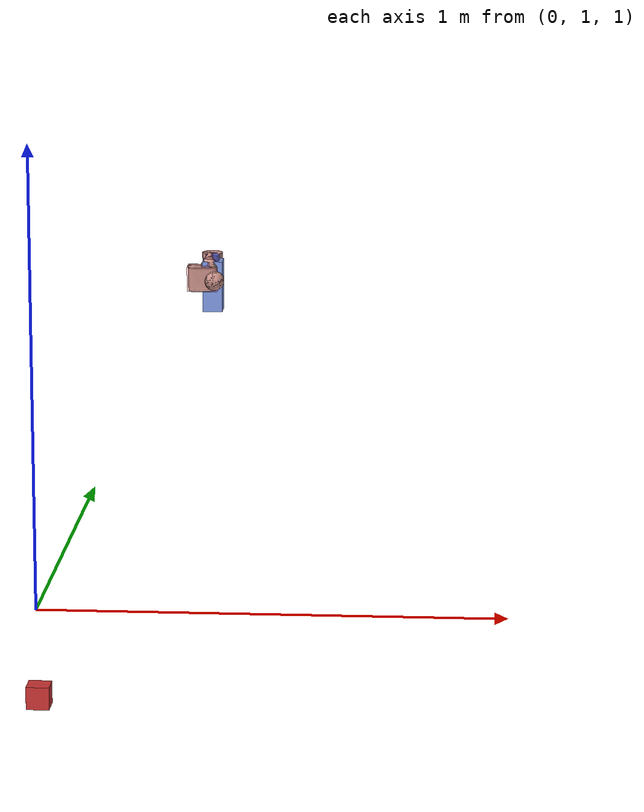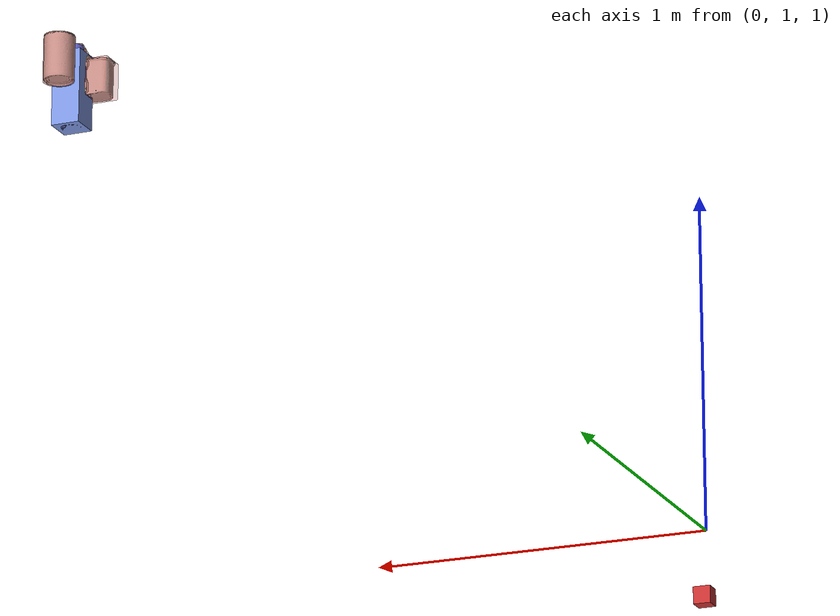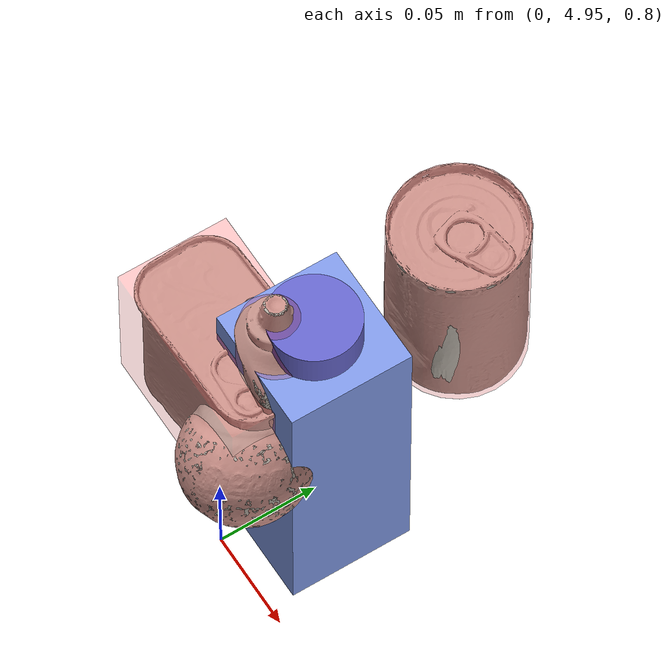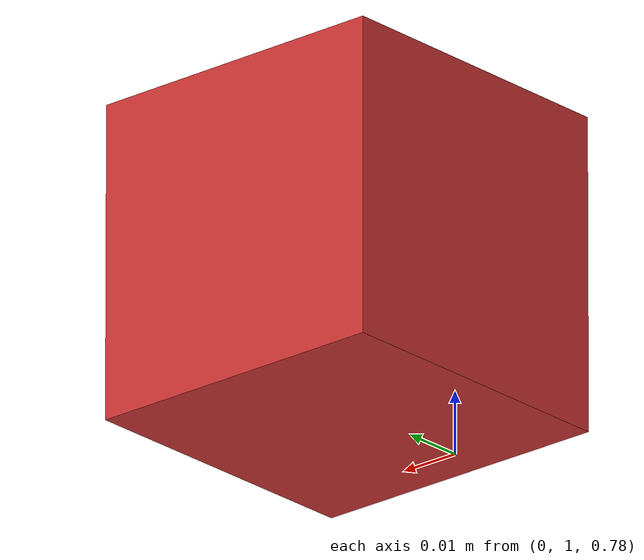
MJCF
<mujoco>
	<!-- Free objects that can be spawned/reset in the scene -->
	<asset>
		<!-- GraspIt objects -->
		<mesh name="graspit_cylinder_mesh" file="../../assets/misc/objects/graspit/cylinder.stl" />
		<mesh name="graspit_box_mesh" file="../../assets/misc/objects/graspit/box.stl" />

		<texture name="005_tomato_soup_can_tex" file="../../assets/misc/objects/ycb/005_tomato_soup_can/texture_map.png" type="2d" />
		<material name="005_tomato_soup_can_mat" texture="005_tomato_soup_can_tex" rgba="1 1 1 1" />
		<mesh name="005_tomato_soup_can_vis" file="../../assets/misc/objects/ycb/005_tomato_soup_can/meshes/textured.obj" scale="0.82 0.82 0.82" />
		<mesh name="005_tomato_soup_can_col" file="../../assets/misc/objects/ycb/005_tomato_soup_can/meshes/nontextured.stl" scale="0.82 0.82 0.82" />

		<texture name="006_mustard_bottle_tex" file="../../assets/misc/objects/ycb/006_mustard_bottle/texture_map.png" type="2d" />
		<material name="006_mustard_bottle_mat" texture="006_mustard_bottle_tex" rgba="1 1 1 1" />
		<mesh name="006_mustard_bottle_vis" file="../../assets/misc/objects/ycb/006_mustard_bottle/meshes/textured.obj" />
		<mesh name="006_mustard_bottle_col" file="../../assets/misc/objects/ycb/006_mustard_bottle/meshes/nontextured.stl" />

		<texture name="010_potted_meat_can_tex" file="../../assets/misc/objects/ycb/010_potted_meat_can/texture_map.png" type="2d" />
		<material name="010_potted_meat_can_mat" texture="010_potted_meat_can_tex" rgba="1 1 1 1" />
		<mesh name="010_potted_meat_can_vis" file="../../assets/misc/objects/ycb/010_potted_meat_can/meshes/textured.obj" scale="0.80 0.80 0.80" />
		<mesh name="010_potted_meat_can_col" file="../../assets/misc/objects/ycb/010_potted_meat_can/meshes/nontextured.stl" scale="0.80 0.80 0.80" />

		<texture name="056_tennis_ball_tex" file="../../assets/misc/objects/ycb/056_tennis_ball/texture_map.png" type="2d" />
		<material name="056_tennis_ball_mat" texture="056_tennis_ball_tex" rgba="1 1 1 1" />
		<mesh name="056_tennis_ball_vis" file="../../assets/misc/objects/ycb/056_tennis_ball/meshes/textured.obj" scale="0.52 0.52 0.52" />
		<mesh name="056_tennis_ball_col" file="../../assets/misc/objects/ycb/056_tennis_ball/meshes/nontextured.stl" scale="0.52 0.52 0.52" />
	</asset>
	<worldbody>
		<!-- Example manipulatable objects -->
		<!-- Cube for pick-and-place tasks -->
		<body name="cube" pos="0 1.024 0.802" quat="1 0 0 0">
			<freejoint />
			<geom name="cube_collision"
			      type="box"
			      size="0.025 0.025 0.025"
			      friction="1.0 0.02 0.01"
			      condim="4"
			      rgba="0.8 0.2 0.2 1"
			      group="0"
			      solref="0.002 1"
				  solimp="0.95 0.99 0.0001" />
			<inertial pos="0 0 0" mass="0.05" diaginertia="1e-4 1e-4 1e-4" />

			<!-- Simple visual marker to ensure cube is visible in viewer -->
			<geom name="cube_marker" type="sphere" size="0.01" rgba="0 1 0 1" contype="0" conaffinity="0" group="3" />

			<site name="cube_center" pos="0 0 0" size="0.001" />
		</body>
		<body name="graspit_cylinder" pos="0 5.0 0.867" quat="1 0 0 0">
			<freejoint />
			<geom name="graspit_cylinder_geom"
			      type="mesh"
			      mesh="graspit_cylinder_mesh"
			      rgba="0.4 0.4 0.8 1"
			      friction="1.0 0.02 0.01"
			      condim="4"
			      solref="0.002 1"
			      solimp="0.95 0.99 0.0001"
			      group="0"/>
			<inertial pos="0 0 0" mass="0.44" diaginertia="0.001 0.001 0.0005"/>
		</body>

		<!-- Box standing upright on 62.5x62.5mm face (long 162.5mm axis vertical) -->
		<body name="graspit_box" pos="0 5.0 0.85825" quat="1 0 0 0">
			<freejoint />
			<geom name="graspit_box_geom"
			      type="box"
			      size="0.03125 0.03125 0.08125"
			      rgba="0.5 0.6 0.9 1"
			      friction="1.0 0.02 0.01"
			      condim="4"
			      solref="0.002 1"
			      solimp="0.95 0.99 0.0001"
			      group="0"/>
			<inertial pos="0 0 0" mass="0.08" diaginertia="0.0002 0.0001 0.0001"/>
		</body>

		<!-- YCB Objects from the paper: mustard, soup, tennis_ball, potted_meat -->
		<!-- All bodies stay enabled. Only the object chosen by the object option shows at reset, others park at Y=5.0 -->

		<body name="005_tomato_soup_can" pos="0 5.0 0.85" quat="1 0 0 0">
			<freejoint />
			<inertial pos="-0.00902521 0.08136729 0.04832892" mass="0.09666175" diaginertia="6.68478517e-05 0.00012533381 0.00012533381" />

			<geom name="005_tomato_soup_can_visual"
			      type="mesh"
			      mesh="005_tomato_soup_can_vis"
			      material="005_tomato_soup_can_mat"
			      contype="0"
			      conaffinity="0"
			      group="1" />

			<!-- Cylinder primitive collision (mesh was unstable on table contact) -->
			<geom name="005_tomato_soup_can_collision"
			      type="cylinder"
			      pos="-0.00886 0.08117 0.04928"
			      size="0.0328 0.0492"
			      rgba="1 0 0 0.02"
			      contype="1"
			      conaffinity="1"
			      condim="4"
			      friction="1.0 0.02 0.01"
			      solref="0.002 1"
			      solimp="0.95 0.99 0.0001"
			      group="0" />
		</body>

		<body name="006_mustard_bottle" pos="0 5.0 0.85" quat="1 0 0 0">
			<freejoint />
			<inertial pos="-0.0094433365 -0.014496135 0.047072792" mass="0.051737892" diaginertia="1.4279299e-05 4.8397096e-05 5.5539277e-05" />

			<geom name="006_mustard_bottle_visual"
			      type="mesh"
			      mesh="006_mustard_bottle_vis"
			      material="006_mustard_bottle_mat"
			      contype="0"
			      conaffinity="0"
			      group="1" />

			<geom name="006_mustard_bottle_collision"
			      type="mesh"
			      mesh="006_mustard_bottle_col"
			      rgba="1 0 0 0.02"
			      contype="1"
			      conaffinity="1"
			      condim="4"
			      friction="1.0 0.02 0.01"
			      solref="0.002 1"
			      solimp="0.95 0.99 0.0001"
			      group="0" />
		</body>

		<body name="010_potted_meat_can" pos="0 5.0 0.85" quat="1 0 0 0">
			<freejoint />
			<inertial pos="-0.03088283 -0.0247819 0.03557586" mass="0.10538819" diaginertia="9.40231400e-05 0.00011752893 0.00015670523" />

			<geom name="010_potted_meat_can_visual"
			      type="mesh"
			      mesh="010_potted_meat_can_vis"
			      material="010_potted_meat_can_mat"
			      contype="0"
			      conaffinity="0"
			      group="1" />

			<!-- Box primitive collision (mesh was unstable on table contact) -->
			<geom name="010_potted_meat_can_collision"
			      type="box"
			      pos="-0.03083 -0.02497 0.03628"
			      size="0.048 0.02826 0.03928"
			      rgba="1 0 0 0.02"
			      contype="1"
			      conaffinity="1"
			      condim="4"
			      friction="1.0 0.02 0.01"
			      solref="0.002 1"
			      solimp="0.95 0.99 0.0001"
			      group="0" />
		</body>

		<body name="056_tennis_ball" pos="0 5.0 0.85" quat="1 0 0 0">
			<freejoint />
			<inertial pos="0.00613163 -0.03291192 0.02449202" mass="0.05179129" diaginertia="1.65606704e-05 1.65606704e-05 1.65606704e-05" />

			<geom name="056_tennis_ball_visual"
			      type="mesh"
			      mesh="056_tennis_ball_vis"
			      material="056_tennis_ball_mat"
			      contype="0"
			      conaffinity="0"
			      group="1" />

			<geom name="056_tennis_ball_collision"
			      type="mesh"
			      mesh="056_tennis_ball_col"
			      rgba="1 0 0 0.02"
			      contype="1"
			      conaffinity="1"
			      condim="4"
			      friction="1.0 0.02 0.01"
			      solref="0.002 1"
			      solimp="0.95 0.99 0.0001"
			      group="0" />
		</body>
	</worldbody>
</mujoco>
